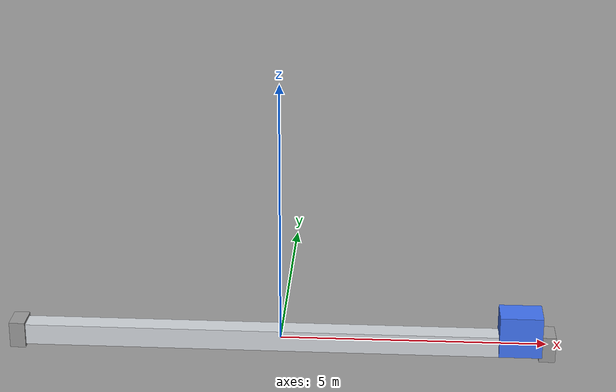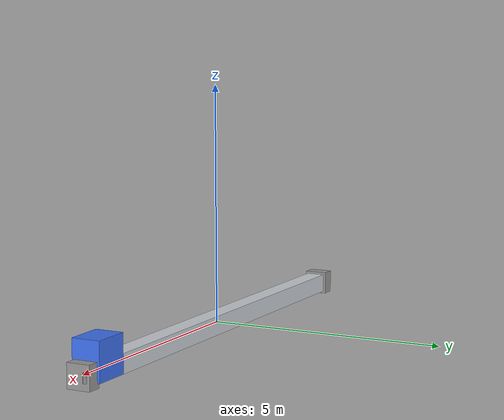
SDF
<?xml version="1.0"?>

<sdf version="1.10">

<model name="busbar_c">

  <static>true</static>

  <link name="link">

    <!-- MAIN ALUMINUM BUSBAR -->

    <visual name="busbar_c_main">
      <geometry>
        <box>
          <size>10 0.4 0.4</size>
        </box>
      </geometry>
      <material>
        <ambient>0.72 0.74 0.76 1</ambient>
        <diffuse>0.82 0.84 0.86 1</diffuse>
        <specular>0.45 0.45 0.45 1</specular>
      </material>
    </visual>

    <!-- Busbar grooves for realism -->
    <visual name="busbar_c_groove_1">
      <pose>0 0 -0.15 0 0 0</pose>
      <geometry>
        <box>
          <size>10 0.35 0.05</size>
        </box>
      </geometry>
      <material>
        <ambient>0.7 0.7 0.7 1</ambient>
        <diffuse>0.8 0.8 0.8 1</diffuse>
      </material>
    </visual>

    <visual name="busbar_c_groove_2">
      <pose>0 0 0.15 0 0 0</pose>
      <geometry>
        <box>
          <size>10 0.35 0.05</size>
        </box>
      </geometry>
      <material>
        <ambient>0.7 0.7 0.7 1</ambient>
        <diffuse>0.8 0.8 0.8 1</diffuse>
      </material>
    </visual>

    <!-- LEFT ANCHOR CLAMP -->

    <visual name="left_clamp_main">
      <pose>-5 0 0 0 0 0</pose>
      <geometry>
        <box>
          <size>0.3 0.5 0.5</size>
        </box>
      </geometry>
      <material>
        <ambient>0.5 0.5 0.5 1</ambient>
        <diffuse>0.6 0.6 0.6 1</diffuse>
      </material>
    </visual>

    <visual name="left_clamp_screw">
      <pose>-5.15 0.15 0 0 0 0</pose>
      <geometry>
        <cylinder>
          <radius>0.04</radius>
          <length>0.2</length>
        </cylinder>
      </geometry>
      <material>
        <ambient>0.4 0.4 0.4 1</ambient>
        <diffuse>0.5 0.5 0.5 1</diffuse>
      </material>
    </visual>

    <!-- RIGHT ANCHOR CLAMP -->

    <visual name="right_clamp_main">
      <pose>5 0 0 0 0 0</pose>
      <geometry>
        <box>
          <size>0.3 0.5 0.5</size>
        </box>
      </geometry>
      <material>
        <ambient>0.5 0.5 0.5 1</ambient>
        <diffuse>0.6 0.6 0.6 1</diffuse>
      </material>
    </visual>

    <visual name="right_clamp_screw">
      <pose>5.15 0.15 0 0 0 0</pose>
      <geometry>
        <cylinder>
          <radius>0.04</radius>
          <length>0.2</length>
        </cylinder>
      </geometry>
      <material>
        <ambient>0.4 0.4 0.4 1</ambient>
        <diffuse>0.5 0.5 0.5 1</diffuse>
      </material>
    </visual>

    <!-- INTERMEDIATE SUPPORTS -->

    <visual name="mid_support_1">
      <pose>-3.3 0 0 0 0 0</pose>
      <geometry>
        <box>
          <size>0.15 0.3 0.3</size>
        </box>
      </geometry>
      <material>
        <ambient>0.55 0.55 0.55 1</ambient>
        <diffuse>0.65 0.65 0.65 1</diffuse>
      </material>
    </visual>

    <visual name="mid_support_2">
      <pose>-1.65 0 0 0 0 0</pose>
      <geometry>
        <box>
          <size>0.15 0.3 0.3</size>
        </box>
      </geometry>
      <material>
        <ambient>0.55 0.55 0.55 1</ambient>
        <diffuse>0.65 0.65 0.65 1</diffuse>
      </material>
    </visual>

    <visual name="mid_support_3">
      <pose>0 0 0 0 0 0</pose>
      <geometry>
        <box>
          <size>0.15 0.3 0.3</size>
        </box>
      </geometry>
      <material>
        <ambient>0.55 0.55 0.55 1</ambient>
        <diffuse>0.65 0.65 0.65 1</diffuse>
      </material>
    </visual>

    <visual name="mid_support_4">
      <pose>1.65 0 0 0 0 0</pose>
      <geometry>
        <box>
          <size>0.15 0.3 0.3</size>
        </box>
      </geometry>
      <material>
        <ambient>0.55 0.55 0.55 1</ambient>
        <diffuse>0.65 0.65 0.65 1</diffuse>
      </material>
    </visual>

    <visual name="mid_support_5">
      <pose>3.3 0 0 0 0 0</pose>
      <geometry>
        <box>
          <size>0.15 0.3 0.3</size>
        </box>
      </geometry>
      <material>
        <ambient>0.55 0.55 0.55 1</ambient>
        <diffuse>0.65 0.65 0.65 1</diffuse>
      </material>
    </visual>

    <!-- PHASE IDENTIFICATION BAND -->
    <!-- (Color applied via world file) -->
    <!-- Red=Phase A, Yellow=Phase B, Blue=Phase C -->

    <visual name="phase_id_band">
      <pose>4.5 0 0.25 0 0 0</pose>
      <geometry>
        <box>
          <size>0.8 0.6 0.8</size>
        </box>
      </geometry>
      <material>
        <ambient>0.15 0.35 0.85 1</ambient>
        <diffuse>0.25 0.45 0.95 1</diffuse>
        <specular>0.3 0.3 0.3 1</specular>
      </material>
    </visual>

    <!-- COLLISION -->

    <collision name="collision">
      <geometry>
        <box>
          <size>10 0.4 0.4</size>
        </box>
      </geometry>
    </collision>

  </link>

</model>

</sdf>
